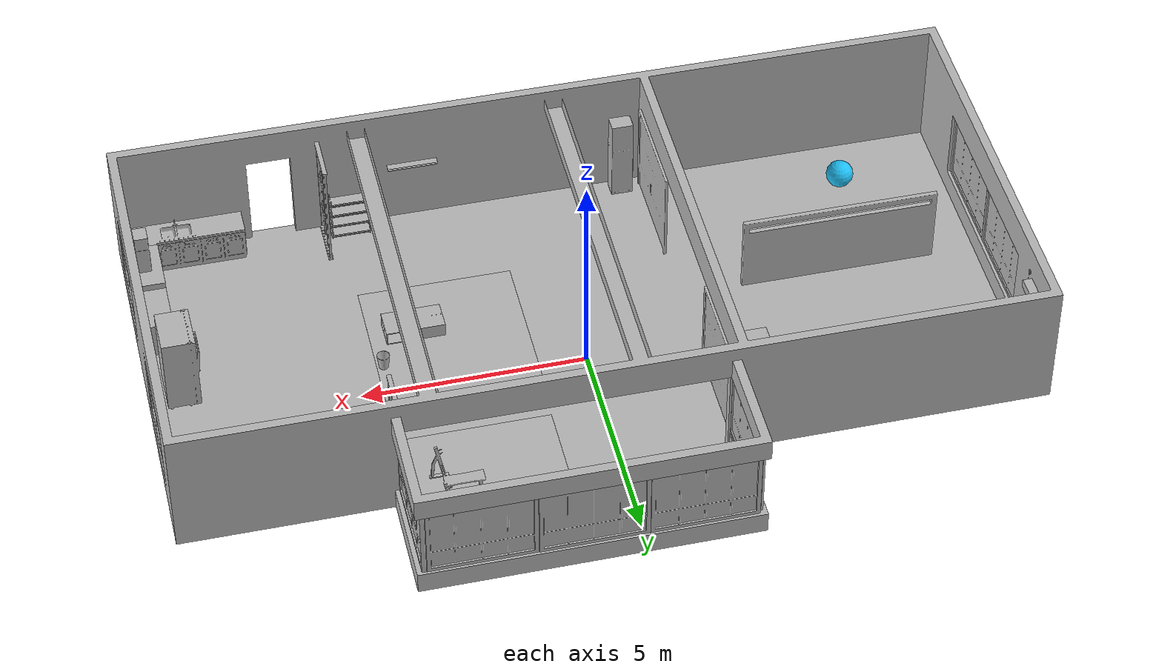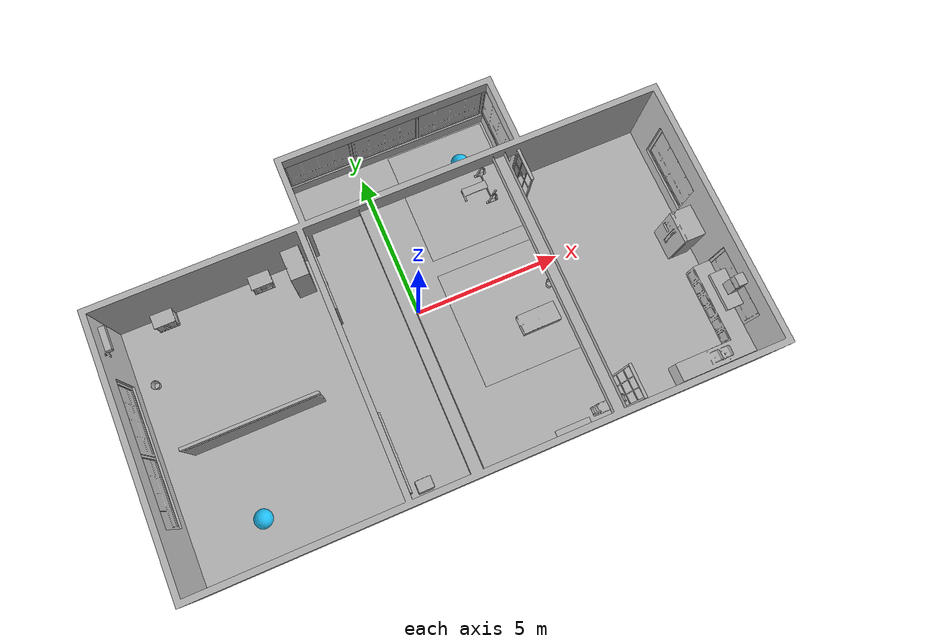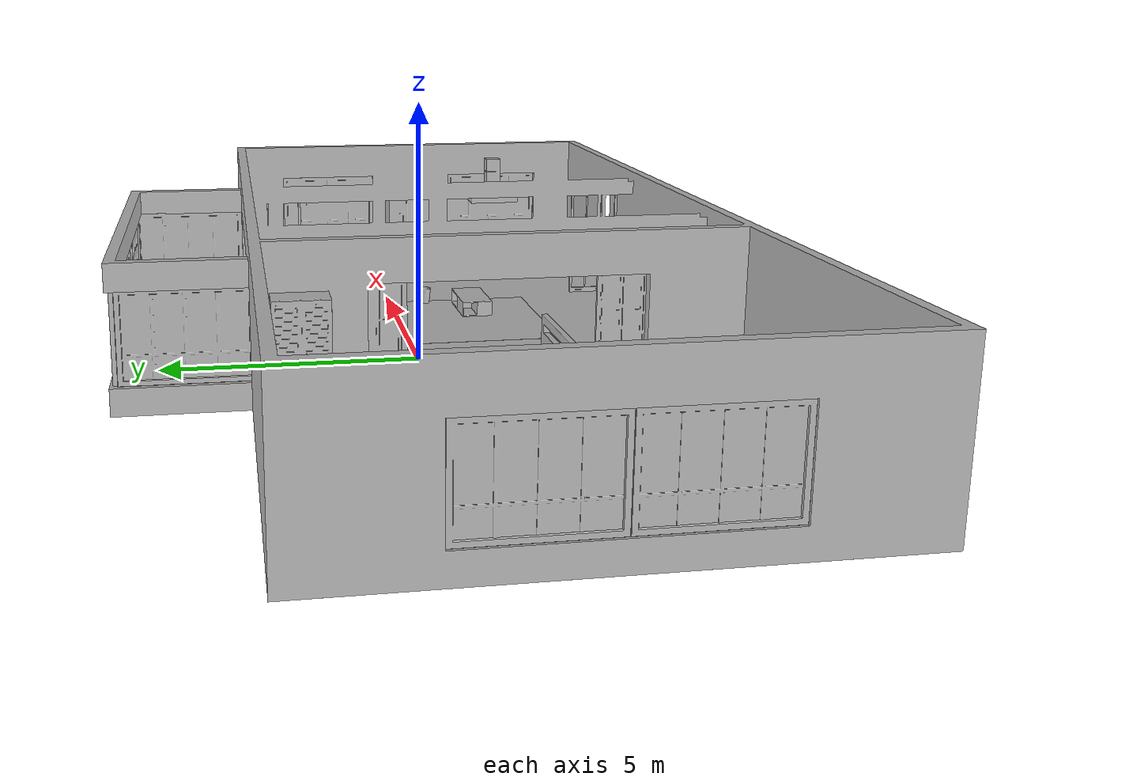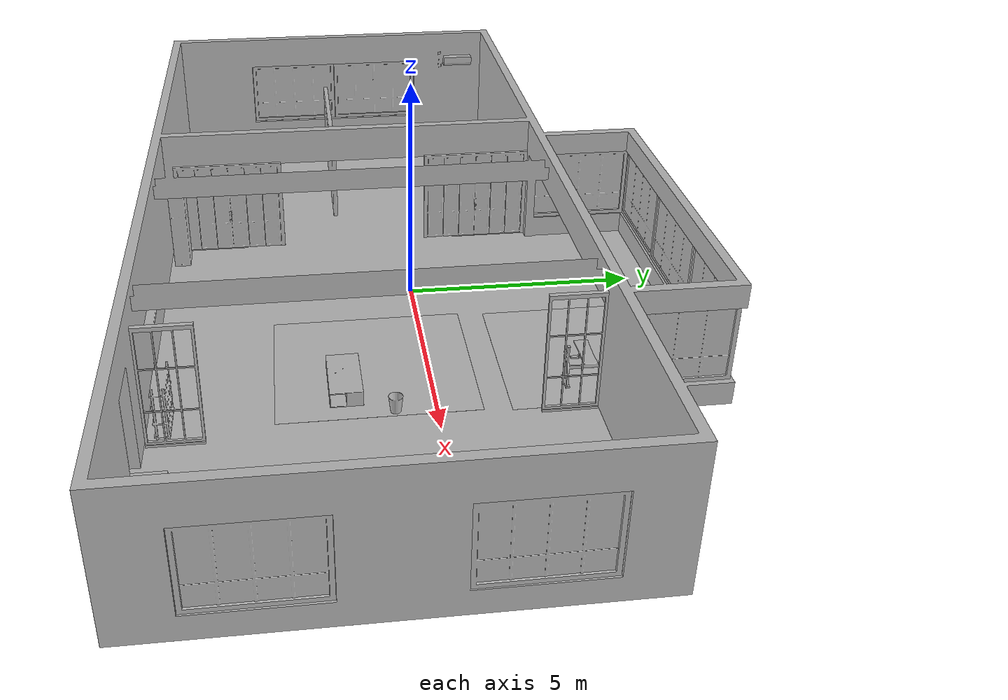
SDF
<sdf version="1.7">
 <world name="default">
  <physics type="ode">
   <gravity>0 0 -9.8066</gravity>
   <ode>
    <solver>
     <type>quick</type>
     <iters>10</iters>
     <sor>1.3</sor>
     <use_dynamic_moi_rescaling>0</use_dynamic_moi_rescaling>
    </solver>
    <constraints>
     <cfm>0.00001</cfm>
     <erp>0.2</erp>
     <contact_max_correcting_vel>1000</contact_max_correcting_vel>
     <contact_surface_layer>0.01</contact_surface_layer>
    </constraints>
   </ode>
   <max_step_size>0.004</max_step_size>
   <real_time_factor>1.0</real_time_factor>
   <real_time_update_rate>250</real_time_update_rate>
   <magnetic_field>6.0e-6 2.3e-5 -4.2e-5</magnetic_field>
  </physics>
  <model name="AirconditionerA_01_001">
   <frame name="aws_robomaker_residential_AirconditionerA_01::__model__" attached_to="aws_robomaker_residential_AirconditionerA_01::link">
    <pose relative_to="__model__">0 0 0 0 -0 0</pose>
   </frame>
   <link name="aws_robomaker_residential_AirconditionerA_01::link">
    <inertial><mass>1</mass></inertial>
    <collision name="collision">
     <geometry>
      <mesh>
       <uri>file://models/aws_robomaker_residential_AirconditionerA_01/meshes/aws_AirconditionerA_01_collision.DAE</uri>
       <scale>1 1 1</scale>
      </mesh>
     </geometry>
    </collision>
    <visual name="visual">
     <geometry>
      <mesh>
       <uri>file://models/aws_robomaker_residential_AirconditionerA_01/meshes/aws_AirconditionerA_01_visual.DAE</uri>
      </mesh>
     </geometry>
     <meta><layer>1</layer></meta>
    </visual>
    <pose relative_to="aws_robomaker_residential_AirconditionerA_01::__model__">0 0 0 0 -0 0</pose>
   </link>
   <static>1</static>
   <pose>-9.19941 2.41123 2.08454 0 -0 0</pose>
  </model>
  <model name="AirconditionerB_01_001">
   <frame name="aws_robomaker_residential_AirconditionerB_01::__model__" attached_to="aws_robomaker_residential_AirconditionerB_01::link">
    <pose relative_to="__model__">0 0 0 0 -0 0</pose>
   </frame>
   <link name="aws_robomaker_residential_AirconditionerB_01::link">
    <inertial>
     <mass>1</mass>
     <inertia><ixx>1</ixx><ixy>0</ixy><ixz>0</ixz><iyy>1</iyy><iyz>0</iyz><izz>1</izz></inertia>
    </inertial>
    <collision name="collision">
     <geometry>
      <mesh>
       <uri>model://aws_robomaker_residential_AirconditionerB_01/meshes/aws_AirconditionerB_01_collision.DAE</uri>
       <scale>1 1 1</scale>
      </mesh>
     </geometry>
    </collision>
    <visual name="visual">
     <geometry>
      <mesh>
       <uri>model://aws_robomaker_residential_AirconditionerB_01/meshes/aws_AirconditionerB_01_visual.DAE</uri>
      </mesh>
     </geometry>
     <meta><layer>1</layer></meta>
    </visual>
    <pose relative_to="aws_robomaker_residential_AirconditionerB_01::__model__">0 0 0 0 -0 0</pose>
   </link>
   <pose>-2.00466 -5.22661 0.003484 0 -3e-06 0</pose>
  </model>
  <model name="Ball_01_001">
   <frame name="aws_robomaker_residential_Ball_01::__model__" attached_to="aws_robomaker_residential_Ball_01::link">
    <pose relative_to="__model__">0 0 0 0 -0 0</pose>
   </frame>
   <link name="aws_robomaker_residential_Ball_01::link">
    <inertial>
     <mass>0.12</mass>
     <inertia>
      <ixx>0.030752</ixx>
      <ixy>0</ixy>
      <ixz>0</ixz>
      <iyy>0.030752</iyy>
      <iyz>0</iyz>
      <izz>0.030752</izz>
     </inertia>
    </inertial>
    <collision name="collision">
     <geometry><sphere><radius>0.31</radius></sphere></geometry>
     <surface>
      <friction><ode><mu>0.85</mu><mu2>0.85</mu2></ode></friction>
      <contact><ode><kd>8500</kd><max_vel>5.1</max_vel></ode></contact>
     </surface>
    </collision>
    <visual name="visual">
     <geometry><sphere><radius>0.31</radius></sphere></geometry>
     <material><diffuse>0.12 0.76 0.97 1</diffuse><ambient>0.03 0.21 0.27 1</ambient></material>
     <meta><layer>1</layer></meta>
    </visual>
    <pose relative_to="aws_robomaker_residential_Ball_01::__model__">0 0 0 0 -0 0</pose>
   </link>
   <pose>3.2955 4.22567 0.31 0 -0 0</pose>
  </model>
  <model name="Ball_01_003">
   <frame name="aws_robomaker_residential_Ball_01::__model__" attached_to="aws_robomaker_residential_Ball_01::link">
    <pose relative_to="__model__">0 0 0 0 -0 0</pose>
   </frame>
   <link name="aws_robomaker_residential_Ball_01::link">
    <inertial>
     <mass>0.12</mass>
     <inertia>
      <ixx>0.030752</ixx>
      <ixy>0</ixy>
      <ixz>0</ixz>
      <iyy>0.030752</iyy>
      <iyz>0</iyz>
      <izz>0.030752</izz>
     </inertia>
    </inertial>
    <collision name="collision">
     <geometry><sphere><radius>0.31</radius></sphere></geometry>
     <surface>
      <friction><ode><mu>0.85</mu><mu2>0.85</mu2></ode></friction>
      <contact><ode><kd>8500</kd><max_vel>5.1</max_vel></ode></contact>
     </surface>
    </collision>
    <visual name="visual">
     <geometry><sphere><radius>0.31</radius></sphere></geometry>
     <material><diffuse>0.12 0.76 0.97 1</diffuse><ambient>0.03 0.21 0.27 1</ambient></material>
     <meta><layer>1</layer></meta>
    </visual>
    <pose relative_to="aws_robomaker_residential_Ball_01::__model__">0 0 0 0 -0 0</pose>
   </link>
   <pose>-6.9455 -4.22174 0.31 0 -0 0</pose>
  </model>
  <model name="NightStand_01_001">
   <frame name="aws_robomaker_residential_NightStand_01::__model__" attached_to="aws_robomaker_residential_NightStand_01::link">
    <pose relative_to="__model__">0 0 0 0 -0 0</pose>
   </frame>
   <link name="aws_robomaker_residential_NightStand_01::link">
    <inertial>
     <mass>13.6</mass>
     <inertia><ixx>0.6165</ixx><ixy>0</ixy><ixz>0</ixz><iyy>1.29664</iyy><iyz>0</iyz><izz>0.7706</izz></inertia>
    </inertial>
    <collision name="collision">
     <geometry>
      <mesh>
       <uri>model://aws_robomaker_residential_NightStand_01/meshes/aws_NightStand_01_collision.DAE</uri>
       <scale>1 1 1</scale>
      </mesh>
     </geometry>
    </collision>
    <visual name="visual">
     <geometry>
      <mesh><uri>model://aws_robomaker_residential_NightStand_01/meshes/aws_NightStand_01_visual.DAE</uri></mesh>
     </geometry>
     <meta><layer>1</layer></meta>
    </visual>
    <pose relative_to="aws_robomaker_residential_NightStand_01::__model__">0 0 0 0 -0 0</pose>
   </link>
   <static>1</static>
   <pose>-7.72551 2.86042 0.005258 -2e-06 0 0</pose>
  </model>
  <model name="NightStand_01_002">
   <frame name="aws_robomaker_residential_NightStand_01::__model__" attached_to="aws_robomaker_residential_NightStand_01::link">
    <pose relative_to="__model__">0 0 0 0 -0 0</pose>
   </frame>
   <link name="aws_robomaker_residential_NightStand_01::link">
    <inertial>
     <mass>13.6</mass>
     <inertia><ixx>0.6165</ixx><ixy>0</ixy><ixz>0</ixz><iyy>1.29664</iyy><iyz>0</iyz><izz>0.7706</izz></inertia>
    </inertial>
    <collision name="collision">
     <geometry>
      <mesh>
       <uri>model://aws_robomaker_residential_NightStand_01/meshes/aws_NightStand_01_collision.DAE</uri>
       <scale>1 1 1</scale>
      </mesh>
     </geometry>
    </collision>
    <visual name="visual">
     <geometry>
      <mesh><uri>model://aws_robomaker_residential_NightStand_01/meshes/aws_NightStand_01_visual.DAE</uri></mesh>
     </geometry>
     <meta><layer>1</layer></meta>
    </visual>
    <pose relative_to="aws_robomaker_residential_NightStand_01::__model__">0 0 0 0 -0 0</pose>
   </link>
   <static>1</static>
   <pose>-4.40734 2.86042 0.005256 0 2e-06 0</pose>
  </model>
  <model name="Board_01_001">
   <frame name="aws_robomaker_residential_Board_01::__model__" attached_to="aws_robomaker_residential_Board_01::link">
    <pose relative_to="__model__">0 0 0 0 -0 0</pose>
   </frame>
   <link name="aws_robomaker_residential_Board_01::link">
    <inertial><mass>1</mass></inertial>
    <collision name="collision">
     <geometry>
      <mesh>
       <uri>model://aws_robomaker_residential_Board_01/meshes/aws_Board_01_collision.DAE</uri>
       <scale>1 1 1</scale>
      </mesh>
     </geometry>
    </collision>
    <visual name="visual">
     <geometry>
      <mesh><uri>model://aws_robomaker_residential_Board_01/meshes/aws_Board_01_visual.DAE</uri></mesh>
     </geometry>
     <meta><layer>2</layer></meta>
    </visual>
    <pose relative_to="aws_robomaker_residential_Board_01::__model__">0 0 0 0 -0 0</pose>
   </link>
   <static>1</static>
   <pose>2.77907 -5.3927 1.53817 0 -0 0</pose>
  </model>
  <model name="Carpet_01_001">
   <frame name="aws_robomaker_residential_Carpet_01::__model__" attached_to="aws_robomaker_residential_Carpet_01::link">
    <pose relative_to="__model__">0 0 0 0 -0 0</pose>
   </frame>
   <link name="aws_robomaker_residential_Carpet_01::link">
    <inertial><mass>8.1</mass></inertial>
    <collision name="collision">
     <geometry>
      <mesh>
       <uri>model://aws_robomaker_residential_Carpet_01/meshes/aws_Carpet_01_collision.DAE</uri>
       <scale>1 1 0.95</scale>
      </mesh>
     </geometry>
     <pose>0 0 -0.01 0 -0 0</pose>
    </collision>
    <visual name="visual">
     <geometry>
      <mesh><uri>model://aws_robomaker_residential_Carpet_01/meshes/aws_Carpet_01_visual.DAE</uri></mesh>
     </geometry>
     <meta><layer>1</layer></meta>
    </visual>
    <pose relative_to="aws_robomaker_residential_Carpet_01::__model__">0 0 0 0 -0 0</pose>
   </link>
   <static>1</static>
   <pose>2.78505 -1.10665 0.001106 0 -0 0</pose>
  </model>
  <model name="Carpet_01_002">
   <frame name="aws_robomaker_residential_Carpet_01::__model__" attached_to="aws_robomaker_residential_Carpet_01::link">
    <pose relative_to="__model__">0 0 0 0 -0 0</pose>
   </frame>
   <link name="aws_robomaker_residential_Carpet_01::link">
    <inertial><mass>8.1</mass></inertial>
    <collision name="collision">
     <geometry>
      <mesh>
       <uri>model://aws_robomaker_residential_Carpet_01/meshes/aws_Carpet_01_collision.DAE</uri>
       <scale>1 1 0.95</scale>
      </mesh>
     </geometry>
     <pose>0 0 -0.01 0 -0 0</pose>
    </collision>
    <visual name="visual">
     <geometry>
      <mesh><uri>model://aws_robomaker_residential_Carpet_01/meshes/aws_Carpet_01_visual.DAE</uri></mesh>
     </geometry>
     <meta><layer>1</layer></meta>
    </visual>
    <pose relative_to="aws_robomaker_residential_Carpet_01::__model__">0 0 0 0 -0 0</pose>
   </link>
   <static>1</static>
   <pose>2.85405 3.45 0.000585 0 -0 0</pose>
  </model>
  <model name="CoffeeTable_01_001">
   <frame name="aws_robomaker_residential_CoffeeTable_01::__model__" attached_to="aws_robomaker_residential_CoffeeTable_01::link">
    <pose relative_to="__model__">0 0 0 0 -0 0</pose>
   </frame>
   <link name="aws_robomaker_residential_CoffeeTable_01::link">
    <inertial>
     <mass>21.7</mass>
     <inertia><ixx>0.81375</ixx><ixy>0</ixy><ixz>0</ixz><iyy>2.76675</iyy><iyz>0</iyz><izz>3.254</izz></inertia>
    </inertial>
    <collision name="collision">
     <geometry>
      <mesh>
       <uri>model://aws_robomaker_residential_CoffeeTable_01/meshes/aws_CoffeeTable_01_collision.DAE</uri>
       <scale>1 1 1</scale>
      </mesh>
     </geometry>
     <surface><contact><ode><max_vel>0.01</max_vel></ode></contact></surface>
    </collision>
    <visual name="visual">
     <geometry>
      <mesh><uri>model://aws_robomaker_residential_CoffeeTable_01/meshes/aws_CoffeeTable_01_visual.DAE</uri></mesh>
     </geometry>
     <meta><layer>1</layer></meta>
    </visual>
    <pose relative_to="aws_robomaker_residential_CoffeeTable_01::__model__">0 0 0 0 -0 0</pose>
   </link>
   <static>1</static>
   <pose>3.5123 -1.73344 0.041983 0 -0 0.01</pose>
  </model>
  <model name="FitnessEquipment_01_001">
   <frame name="aws_robomaker_residential_FitnessEquipment_01::__model__" attached_to="aws_robomaker_residential_FitnessEquipment_01::link">
    <pose relative_to="__model__">0 0 0 0 -0 0</pose>
   </frame>
   <link name="aws_robomaker_residential_FitnessEquipment_01::link">
    <inertial><mass>80</mass></inertial>
    <collision name="collision">
     <geometry>
      <mesh>
       <uri>model://aws_robomaker_residential_FitnessEquipment_01/meshes/aws_FitnessEquipment_01_collision.DAE</uri>
       <scale>1 1 1</scale>
      </mesh>
     </geometry>
    </collision>
    <visual name="visual">
     <geometry>
      <mesh>
       <uri>model://aws_robomaker_residential_FitnessEquipment_01/meshes/aws_FitnessEquipment_01_visual.DAE</uri>
      </mesh>
     </geometry>
     <meta><layer>1</layer></meta>
    </visual>
    <pose relative_to="aws_robomaker_residential_FitnessEquipment_01::__model__">0 0 0 0 -0 0</pose>
   </link>
   <static>1</static>
   <pose>3.48472 3.1691 0.003168 0 -0 0</pose>
  </model>
  <model name="FoldingDoor_01_001">
   <frame name="aws_robomaker_residential_FoldingDoor_01::__model__" attached_to="aws_robomaker_residential_FoldingDoor_01::link">
    <pose relative_to="__model__">0 0 0 0 -0 0</pose>
   </frame>
   <link name="aws_robomaker_residential_FoldingDoor_01::link">
    <inertial><mass>1</mass></inertial>
    <collision name="collision">
     <geometry>
      <mesh>
       <uri>model://aws_robomaker_residential_FoldingDoor_01/meshes/aws_FoldingDoor_01_collision.DAE</uri>
       <scale>1 1 1</scale>
      </mesh>
     </geometry>
    </collision>
    <visual name="visual">
     <geometry>
      <mesh><uri>model://aws_robomaker_residential_FoldingDoor_01/meshes/aws_FoldingDoor_01_visual.DAE</uri></mesh>
     </geometry>
     <meta><layer>2</layer></meta>
    </visual>
    <pose relative_to="aws_robomaker_residential_FoldingDoor_01::__model__">0 0 0 0 -0 0</pose>
   </link>
   <static>1</static>
   <pose>-2.4611 1.84422 0.041881 0 -0 0</pose>
  </model>
  <model name="FoldingDoor_01_002">
   <frame name="aws_robomaker_residential_FoldingDoor_01::__model__" attached_to="aws_robomaker_residential_FoldingDoor_01::link">
    <pose relative_to="__model__">0 0 0 0 -0 0</pose>
   </frame>
   <link name="aws_robomaker_residential_FoldingDoor_01::link">
    <inertial><mass>1</mass></inertial>
    <collision name="collision">
     <geometry>
      <mesh>
       <uri>model://aws_robomaker_residential_FoldingDoor_01/meshes/aws_FoldingDoor_01_collision.DAE</uri>
       <scale>1 1 1</scale>
      </mesh>
     </geometry>
    </collision>
    <visual name="visual">
     <geometry>
      <mesh><uri>model://aws_robomaker_residential_FoldingDoor_01/meshes/aws_FoldingDoor_01_visual.DAE</uri></mesh>
     </geometry>
     <meta><layer>2</layer></meta>
    </visual>
    <pose relative_to="aws_robomaker_residential_FoldingDoor_01::__model__">0 0 0 0 -0 0</pose>
   </link>
   <static>1</static>
   <pose>-2.4611 -4.05332 0.041881 0 -0 0</pose>
  </model>
  <model name="HouseWallB_01_001">
   <frame name="aws_robomaker_residential_HouseWallB_01::__model__" attached_to="aws_robomaker_residential_HouseWallB_01::link">
    <pose relative_to="__model__">0 0 0 0 -0 0</pose>
   </frame>
   <link name="aws_robomaker_residential_HouseWallB_01::link">
    <inertial><mass>1</mass></inertial>
    <collision name="collision">
     <geometry>
      <mesh>
       <uri>model://aws_robomaker_residential_HouseWallB_01/meshes/aws_HouseWallB_01_collision.DAE</uri>
       <scale>1 1 1</scale>
      </mesh>
     </geometry>
    </collision>
    <visual name="visual">
     <geometry>
      <mesh><uri>model://aws_robomaker_residential_HouseWallB_01/meshes/aws_HouseWallB_01_visual.DAE</uri></mesh>
     </geometry>
     <meta><layer>2</layer></meta>
    </visual>
    <pose relative_to="aws_robomaker_residential_HouseWallB_01::__model__">0 0 0 0 -0 0</pose>
   </link>
   <static>1</static>
  </model>
  <model name="FloorB_01_001">
   <frame name="aws_robomaker_residential_FloorB_01::__model__" attached_to="aws_robomaker_residential_FloorB_01::link">
    <pose relative_to="__model__">0 0 0 0 -0 0</pose>
   </frame>
   <link name="aws_robomaker_residential_FloorB_01::link">
    <inertial><mass>100</mass></inertial>
    <collision name="collision">
     <geometry>
      <mesh>
       <uri>model://aws_robomaker_residential_FloorB_01/meshes/aws_FloorB_01_collision.DAE</uri>
       <scale>1 1 0.9</scale>
      </mesh>
     </geometry>
     <surface><friction><ode><mu>0.6</mu><mu2>0.6</mu2></ode></friction></surface>
    </collision>
    <visual name="visual">
     <geometry>
      <mesh><uri>model://aws_robomaker_residential_FloorB_01/meshes/aws_FloorB_01_visual.DAE</uri></mesh>
     </geometry>
     <meta><layer>1</layer></meta>
    </visual>
    <pose relative_to="aws_robomaker_residential_FloorB_01::__model__">0 0 0 0 -0 0</pose>
   </link>
   <static>1</static>
  </model>
  <model name="FoldingDoor_02_001">
   <frame name="aws_robomaker_residential_FoldingDoor_02::__model__" attached_to="aws_robomaker_residential_FoldingDoor_02::link">
    <pose relative_to="__model__">0 0 0 0 -0 0</pose>
   </frame>
   <link name="aws_robomaker_residential_FoldingDoor_02::link">
    <inertial><mass>1</mass></inertial>
    <collision name="collision">
     <geometry>
      <mesh>
       <uri>model://aws_robomaker_residential_FoldingDoor_02/meshes/aws_FoldingDoor_02_collision.DAE</uri>
       <scale>1 1 1</scale>
      </mesh>
     </geometry>
    </collision>
    <visual name="visual">
     <geometry>
      <mesh><uri>model://aws_robomaker_residential_FoldingDoor_02/meshes/aws_FoldingDoor_02_visual.DAE</uri></mesh>
     </geometry>
     <meta><layer>2</layer></meta>
    </visual>
    <pose relative_to="aws_robomaker_residential_FoldingDoor_02::__model__">0 0 0 0 -0 0</pose>
   </link>
   <static>1</static>
   <pose>4.67423 2.46451 0 0 -0 3.14159</pose>
  </model>
  <model name="FoldingDoor_02_002">
   <frame name="aws_robomaker_residential_FoldingDoor_02::__model__" attached_to="aws_robomaker_residential_FoldingDoor_02::link">
    <pose relative_to="__model__">0 0 0 0 -0 0</pose>
   </frame>
   <link name="aws_robomaker_residential_FoldingDoor_02::link">
    <inertial><mass>1</mass></inertial>
    <collision name="collision">
     <geometry>
      <mesh>
       <uri>model://aws_robomaker_residential_FoldingDoor_02/meshes/aws_FoldingDoor_02_collision.DAE</uri>
       <scale>1 1 1</scale>
      </mesh>
     </geometry>
    </collision>
    <visual name="visual">
     <geometry>
      <mesh><uri>model://aws_robomaker_residential_FoldingDoor_02/meshes/aws_FoldingDoor_02_visual.DAE</uri></mesh>
     </geometry>
     <meta><layer>2</layer></meta>
    </visual>
    <pose relative_to="aws_robomaker_residential_FoldingDoor_02::__model__">0 0 0 0 -0 0</pose>
   </link>
   <static>1</static>
   <pose>4.8912 -4.84968 0 0 -0 0</pose>
  </model>
  <model name="KitchenCabinet_01_001">
   <frame name="aws_robomaker_residential_KitchenCabinet_01::__model__" attached_to="aws_robomaker_residential_KitchenCabinet_01::link">
    <pose relative_to="__model__">0 0 0 0 -0 0</pose>
   </frame>
   <link name="aws_robomaker_residential_KitchenCabinet_01::link">
    <inertial><mass>1</mass></inertial>
    <collision name="collision">
     <geometry>
      <mesh>
       <uri>model://aws_robomaker_residential_KitchenCabinet_01/meshes/aws_KitchenCabinet_01_collision.DAE</uri>
       <scale>1 1 1</scale>
      </mesh>
     </geometry>
    </collision>
    <visual name="visual">
     <geometry>
      <mesh>
       <uri>model://aws_robomaker_residential_KitchenCabinet_01/meshes/aws_KitchenCabinet_01_visual.DAE</uri>
      </mesh>
     </geometry>
     <meta><layer>1</layer></meta>
    </visual>
    <pose relative_to="aws_robomaker_residential_KitchenCabinet_01::__model__">0 0 0 0 -0 0</pose>
   </link>
   <static>1</static>
   <pose>8.00201 -3.83651 0.012068 0 0 -3.14</pose>
  </model>
  <model name="Rangehood_01_001">
   <frame name="aws_robomaker_residential_Rangehood_01::__model__" attached_to="aws_robomaker_residential_Rangehood_01::link">
    <pose relative_to="__model__">0 0 0 0 -0 0</pose>
   </frame>
   <link name="aws_robomaker_residential_Rangehood_01::link">
    <inertial><mass>1</mass></inertial>
    <collision name="collision">
     <geometry>
      <mesh>
       <uri>model://aws_robomaker_residential_Rangehood_01/meshes/aws_Rangehood_01_collision.DAE</uri>
       <scale>1 1 1</scale>
      </mesh>
     </geometry>
    </collision>
    <visual name="visual">
     <geometry>
      <mesh><uri>model://aws_robomaker_residential_Rangehood_01/meshes/aws_Rangehood_01_visual.DAE</uri></mesh>
     </geometry>
     <meta><layer>2</layer></meta>
    </visual>
    <pose relative_to="aws_robomaker_residential_Rangehood_01::__model__">0 0 0 0 -0 0</pose>
   </link>
   <static>1</static>
   <pose>9.01979 -3.36994 1.50761 0 -0 0</pose>
  </model>
  <model name="Refrigerator_01_001">
   <frame name="aws_robomaker_residential_Refrigerator_01::__model__" attached_to="aws_robomaker_residential_Refrigerator_01::link">
    <pose relative_to="__model__">0 0 0 0 -0 0</pose>
   </frame>
   <link name="aws_robomaker_residential_Refrigerator_01::link">
    <inertial><mass>1</mass></inertial>
    <collision name="collision">
     <geometry>
      <mesh>
       <uri>model://aws_robomaker_residential_Refrigerator_01/meshes/aws_Refrigerator_01_collision.DAE</uri>
       <scale>1 1 1</scale>
      </mesh>
     </geometry>
    </collision>
    <visual name="visual">
     <geometry>
      <mesh>
       <uri>model://aws_robomaker_residential_Refrigerator_01/meshes/aws_Refrigerator_01_visual.DAE</uri>
      </mesh>
     </geometry>
     <meta><layer>1</layer></meta>
    </visual>
    <pose relative_to="aws_robomaker_residential_Refrigerator_01::__model__">0 0 0 0 -0 0</pose>
   </link>
   <static>1</static>
   <pose>8.70273 -1.03203 0 0 0 -1.5635</pose>
  </model>
  <model name="ShoeRack_01_001">
   <frame name="aws_robomaker_residential_ShoeRack_01::__model__" attached_to="aws_robomaker_residential_ShoeRack_01::link">
    <pose relative_to="__model__">0 0 0 0 -0 0</pose>
   </frame>
   <link name="aws_robomaker_residential_ShoeRack_01::link">
    <inertial>
     <mass>6</mass>
     <inertia>
      <ixx>0.02</ixx>
      <ixy>0</ixy>
      <ixz>0</ixz>
      <iyy>0.04</iyy>
      <iyz>0</iyz>
      <ixx>0.02</ixx>
      <izz>1</izz>
     </inertia>
    </inertial>
    <collision name="collision">
     <geometry>
      <mesh>
       <uri>model://aws_robomaker_residential_ShoeRack_01/meshes/aws_ShoeRack_01_collision.DAE</uri>
       <scale>1 1 1</scale>
      </mesh>
     </geometry>
     <surface>
      <friction><ode><mu>0.2</mu><mu2>0.2</mu2></ode></friction>
      <contact><ode><kd>2500</kd></ode></contact>
     </surface>
    </collision>
    <visual name="visual">
     <geometry>
      <mesh><uri>model://aws_robomaker_residential_ShoeRack_01/meshes/aws_ShoeRack_01_visual.DAE</uri></mesh>
     </geometry>
     <meta><layer>1</layer></meta>
    </visual>
    <pose relative_to="aws_robomaker_residential_ShoeRack_01::__model__">0 0 0 0 -0 0</pose>
   </link>
   <pose>4.29798 -5.17357 0.00446 0 -1.1e-05 1e-06</pose>
  </model>
  <model name="Trash_01_001">
   <frame name="aws_robomaker_residential_Trash_01::__model__" attached_to="aws_robomaker_residential_Trash_01::link">
    <pose relative_to="__model__">0 0 0 0 -0 0</pose>
   </frame>
   <link name="aws_robomaker_residential_Trash_01::link">
    <inertial>
     <mass>0.1</mass>
     <inertia><ixy>0</ixy><ixz>0</ixz><iyz>0</iyz><ixx>0.05288</ixx><iyy>0.05288</iyy><izz>0.09132</izz></inertia>
    </inertial>
    <collision name="collision">
     <geometry>
      <mesh>
       <uri>model://aws_robomaker_residential_Trash_01/meshes/aws_Trash_01_collision.DAE</uri>
       <scale>1 1 1</scale>
      </mesh>
     </geometry>
    </collision>
    <visual name="visual">
     <geometry>
      <mesh><uri>model://aws_robomaker_residential_Trash_01/meshes/aws_Trash_01_visual.DAE</uri></mesh>
     </geometry>
     <meta><layer>1</layer></meta>
    </visual>
    <pose relative_to="aws_robomaker_residential_Trash_01::__model__">0 0 0 0 -0 0</pose>
   </link>
   <pose>4.36015 -0.796238 0.000904 0 -0 0</pose>
  </model>
  <model name="Trash_01_002">
   <frame name="aws_robomaker_residential_Trash_01::__model__" attached_to="aws_robomaker_residential_Trash_01::link">
    <pose relative_to="__model__">0 0 0 0 -0 0</pose>
   </frame>
   <link name="aws_robomaker_residential_Trash_01::link">
    <inertial>
     <mass>0.1</mass>
     <inertia><ixy>0</ixy><ixz>0</ixz><iyz>0</iyz><ixx>0.05288</ixx><iyy>0.05288</iyy><izz>0.09132</izz></inertia>
    </inertial>
    <collision name="collision">
     <geometry>
      <mesh>
       <uri>model://aws_robomaker_residential_Trash_01/meshes/aws_Trash_01_collision.DAE</uri>
       <scale>1 1 1</scale>
      </mesh>
     </geometry>
    </collision>
    <visual name="visual">
     <geometry>
      <mesh><uri>model://aws_robomaker_residential_Trash_01/meshes/aws_Trash_01_visual.DAE</uri></mesh>
     </geometry>
     <meta><layer>1</layer></meta>
    </visual>
    <pose relative_to="aws_robomaker_residential_Trash_01::__model__">0 0 0 0 -0 0</pose>
   </link>
   <pose>-8.70415 1.00058 0.000894 0 -0 0</pose>
  </model>
  <model name="RoomWall_01_001">
   <frame name="aws_robomaker_residential_RoomWall_01::__model__" attached_to="aws_robomaker_residential_RoomWall_01::link">
    <pose relative_to="__model__">0 0 0 0 -0 0</pose>
   </frame>
   <link name="aws_robomaker_residential_RoomWall_01::link">
    <inertial><mass>100</mass></inertial>
    <collision name="collision">
     <geometry>
      <mesh>
       <uri>model://aws_robomaker_residential_RoomWall_01/meshes/aws_RoomWall_01_collision.DAE</uri>
       <scale>1 1 1</scale>
      </mesh>
     </geometry>
    </collision>
    <visual name="visual">
     <geometry>
      <mesh><uri>model://aws_robomaker_residential_RoomWall_01/meshes/aws_RoomWall_01_visual.DAE</uri></mesh>
     </geometry>
     <meta><layer>2</layer></meta>
    </visual>
    <pose relative_to="aws_robomaker_residential_RoomWall_01::__model__">0 0 0 0 -0 0</pose>
   </link>
   <static>1</static>
   <pose>-6.09755 -1.49618 0.028124 0 -0 0</pose>
  </model>
  <model name="Wardrobe_01_001">
   <frame name="aws_robomaker_residential_Wardrobe_01::__model__" attached_to="aws_robomaker_residential_Wardrobe_01::link">
    <pose relative_to="__model__">0 0 0 0 -0 0</pose>
   </frame>
   <link name="aws_robomaker_residential_Wardrobe_01::link">
    <inertial><mass>51.7</mass></inertial>
    <collision name="collision">
     <geometry>
      <mesh>
       <uri>model://aws_robomaker_residential_Wardrobe_01/meshes/aws_Wardrobe_01_collision.DAE</uri>
       <scale>1 1 1</scale>
      </mesh>
     </geometry>
    </collision>
    <visual name="visual">
     <geometry>
      <mesh><uri>model://aws_robomaker_residential_Wardrobe_01/meshes/aws_Wardrobe_01_visual.DAE</uri></mesh>
     </geometry>
     <meta><layer>1</layer></meta>
    </visual>
    <pose relative_to="aws_robomaker_residential_Wardrobe_01::__model__">0 0 0 0 -0 0</pose>
   </link>
   <static>1</static>
   <pose>-3.14671 2.4762 0.000704 0 0 -1.56967</pose>
  </model>
  <model name="RoomWindow_01_001">
   <frame name="aws_robomaker_residential_RoomWindow_01::__model__" attached_to="aws_robomaker_residential_RoomWindow_01::link">
    <pose relative_to="__model__">0 0 0 0 -0 0</pose>
   </frame>
   <link name="aws_robomaker_residential_RoomWindow_01::link">
    <inertial><mass>1</mass></inertial>
    <collision name="collision">
     <geometry>
      <mesh>
       <uri>model://aws_robomaker_residential_RoomWindow_01/meshes/aws_RoomWindow_01_collision.DAE</uri>
       <scale>1 1 1</scale>
      </mesh>
     </geometry>
    </collision>
    <visual name="visual">
     <geometry>
      <mesh><uri>model://aws_robomaker_residential_RoomWindow_01/meshes/aws_RoomWindow_01_visual.DAE</uri></mesh>
     </geometry>
     <meta><layer>2</layer></meta>
    </visual>
    <pose relative_to="aws_robomaker_residential_RoomWindow_01::__model__">0 0 0 0 -0 0</pose>
   </link>
   <static>1</static>
   <pose>-9.4186 -0.026285 0.502739 0 -0 0</pose>
  </model>
  <model name="RoomWindow_01_002">
   <frame name="aws_robomaker_residential_RoomWindow_01::__model__" attached_to="aws_robomaker_residential_RoomWindow_01::link">
    <pose relative_to="__model__">0 0 0 0 -0 0</pose>
   </frame>
   <link name="aws_robomaker_residential_RoomWindow_01::link">
    <inertial><mass>1</mass></inertial>
    <collision name="collision">
     <geometry>
      <mesh>
       <uri>model://aws_robomaker_residential_RoomWindow_01/meshes/aws_RoomWindow_01_collision.DAE</uri>
       <scale>1 1 1</scale>
      </mesh>
     </geometry>
    </collision>
    <visual name="visual">
     <geometry>
      <mesh><uri>model://aws_robomaker_residential_RoomWindow_01/meshes/aws_RoomWindow_01_visual.DAE</uri></mesh>
     </geometry>
     <meta><layer>2</layer></meta>
    </visual>
    <pose relative_to="aws_robomaker_residential_RoomWindow_01::__model__">0 0 0 0 -0 0</pose>
   </link>
   <static>1</static>
   <pose>-9.4186 -2.37409 0.502739 0 -0 0</pose>
  </model>
  <model name="RoomWindow_01_003">
   <frame name="aws_robomaker_residential_RoomWindow_01::__model__" attached_to="aws_robomaker_residential_RoomWindow_01::link">
    <pose relative_to="__model__">0 0 0 0 -0 0</pose>
   </frame>
   <link name="aws_robomaker_residential_RoomWindow_01::link">
    <inertial><mass>1</mass></inertial>
    <collision name="collision">
     <geometry>
      <mesh>
       <uri>model://aws_robomaker_residential_RoomWindow_01/meshes/aws_RoomWindow_01_collision.DAE</uri>
       <scale>1 1 1</scale>
      </mesh>
     </geometry>
    </collision>
    <visual name="visual">
     <geometry>
      <mesh><uri>model://aws_robomaker_residential_RoomWindow_01/meshes/aws_RoomWindow_01_visual.DAE</uri></mesh>
     </geometry>
     <meta><layer>2</layer></meta>
    </visual>
    <pose relative_to="aws_robomaker_residential_RoomWindow_01::__model__">0 0 0 0 -0 0</pose>
   </link>
   <static>1</static>
   <pose>9.42262 -3.37398 0.502739 0 0 -3.1361</pose>
  </model>
  <model name="RoomWindow_01_004">
   <frame name="aws_robomaker_residential_RoomWindow_01::__model__" attached_to="aws_robomaker_residential_RoomWindow_01::link">
    <pose relative_to="__model__">0 0 0 0 -0 0</pose>
   </frame>
   <link name="aws_robomaker_residential_RoomWindow_01::link">
    <inertial><mass>1</mass></inertial>
    <collision name="collision">
     <geometry>
      <mesh>
       <uri>model://aws_robomaker_residential_RoomWindow_01/meshes/aws_RoomWindow_01_collision.DAE</uri>
       <scale>1 1 1</scale>
      </mesh>
     </geometry>
    </collision>
    <visual name="visual">
     <geometry>
      <mesh><uri>model://aws_robomaker_residential_RoomWindow_01/meshes/aws_RoomWindow_01_visual.DAE</uri></mesh>
     </geometry>
     <meta><layer>2</layer></meta>
    </visual>
    <pose relative_to="aws_robomaker_residential_RoomWindow_01::__model__">0 0 0 0 -0 0</pose>
   </link>
   <static>1</static>
   <pose>9.42256 0.96852 0.496581 0 0 -3.1361</pose>
  </model>
  <model name="RoomWindow_01_005">
   <frame name="aws_robomaker_residential_RoomWindow_01::__model__" attached_to="aws_robomaker_residential_RoomWindow_01::link">
    <pose relative_to="__model__">0 0 0 0 -0 0</pose>
   </frame>
   <link name="aws_robomaker_residential_RoomWindow_01::link">
    <inertial><mass>1</mass></inertial>
    <collision name="collision">
     <geometry>
      <mesh>
       <uri>model://aws_robomaker_residential_RoomWindow_01/meshes/aws_RoomWindow_01_collision.DAE</uri>
       <scale>1 1 1</scale>
      </mesh>
     </geometry>
    </collision>
    <visual name="visual">
     <geometry>
      <mesh><uri>model://aws_robomaker_residential_RoomWindow_01/meshes/aws_RoomWindow_01_visual.DAE</uri></mesh>
     </geometry>
     <meta><layer>2</layer></meta>
    </visual>
    <pose relative_to="aws_robomaker_residential_RoomWindow_01::__model__">0 0 0 0 -0 0</pose>
   </link>
   <static>1</static>
   <pose>4.72232 4.47028 0.502739 0 0 -3.1361</pose>
  </model>
  <model name="RoomWindow_01_006">
   <frame name="aws_robomaker_residential_RoomWindow_01::__model__" attached_to="aws_robomaker_residential_RoomWindow_01::link">
    <pose relative_to="__model__">0 0 0 0 -0 0</pose>
   </frame>
   <link name="aws_robomaker_residential_RoomWindow_01::link">
    <inertial><mass>1</mass></inertial>
    <collision name="collision">
     <geometry>
      <mesh>
       <uri>model://aws_robomaker_residential_RoomWindow_01/meshes/aws_RoomWindow_01_collision.DAE</uri>
       <scale>1 1 1</scale>
      </mesh>
     </geometry>
    </collision>
    <visual name="visual">
     <geometry>
      <mesh><uri>model://aws_robomaker_residential_RoomWindow_01/meshes/aws_RoomWindow_01_visual.DAE</uri></mesh>
     </geometry>
     <meta><layer>2</layer></meta>
    </visual>
    <pose relative_to="aws_robomaker_residential_RoomWindow_01::__model__">0 0 0 0 -0 0</pose>
   </link>
   <static>1</static>
   <pose>3.48852 5.60069 0.502739 0 0 -1.56627</pose>
  </model>
  <model name="RoomWindow_01_007">
   <frame name="aws_robomaker_residential_RoomWindow_01::__model__" attached_to="aws_robomaker_residential_RoomWindow_01::link">
    <pose relative_to="__model__">0 0 0 0 -0 0</pose>
   </frame>
   <link name="aws_robomaker_residential_RoomWindow_01::link">
    <inertial><mass>1</mass></inertial>
    <collision name="collision">
     <geometry>
      <mesh>
       <uri>model://aws_robomaker_residential_RoomWindow_01/meshes/aws_RoomWindow_01_collision.DAE</uri>
       <scale>1 1 1</scale>
      </mesh>
     </geometry>
    </collision>
    <visual name="visual">
     <geometry>
      <mesh><uri>model://aws_robomaker_residential_RoomWindow_01/meshes/aws_RoomWindow_01_visual.DAE</uri></mesh>
     </geometry>
     <meta><layer>2</layer></meta>
    </visual>
    <pose relative_to="aws_robomaker_residential_RoomWindow_01::__model__">0 0 0 0 -0 0</pose>
   </link>
   <static>1</static>
   <pose>1.14095 5.60069 0.502739 0 0 -1.56627</pose>
  </model>
  <model name="RoomWindow_01_008">
   <frame name="aws_robomaker_residential_RoomWindow_01::__model__" attached_to="aws_robomaker_residential_RoomWindow_01::link">
    <pose relative_to="__model__">0 0 0 0 -0 0</pose>
   </frame>
   <link name="aws_robomaker_residential_RoomWindow_01::link">
    <inertial><mass>1</mass></inertial>
    <collision name="collision">
     <geometry>
      <mesh>
       <uri>model://aws_robomaker_residential_RoomWindow_01/meshes/aws_RoomWindow_01_collision.DAE</uri>
       <scale>1 1 1</scale>
      </mesh>
     </geometry>
    </collision>
    <visual name="visual">
     <geometry>
      <mesh><uri>model://aws_robomaker_residential_RoomWindow_01/meshes/aws_RoomWindow_01_visual.DAE</uri></mesh>
     </geometry>
     <meta><layer>2</layer></meta>
    </visual>
    <pose relative_to="aws_robomaker_residential_RoomWindow_01::__model__">0 0 0 0 -0 0</pose>
   </link>
   <static>1</static>
   <pose>-1.19934 5.60069 0.502739 0 0 -1.56627</pose>
  </model>
  <model name="RoomWindow_01_009">
   <frame name="aws_robomaker_residential_RoomWindow_01::__model__" attached_to="aws_robomaker_residential_RoomWindow_01::link">
    <pose relative_to="__model__">0 0 0 0 -0 0</pose>
   </frame>
   <link name="aws_robomaker_residential_RoomWindow_01::link">
    <inertial><mass>1</mass></inertial>
    <collision name="collision">
     <geometry>
      <mesh>
       <uri>model://aws_robomaker_residential_RoomWindow_01/meshes/aws_RoomWindow_01_collision.DAE</uri>
       <scale>1 1 1</scale>
      </mesh>
     </geometry>
    </collision>
    <visual name="visual">
     <geometry>
      <mesh><uri>model://aws_robomaker_residential_RoomWindow_01/meshes/aws_RoomWindow_01_visual.DAE</uri></mesh>
     </geometry>
     <meta><layer>2</layer></meta>
    </visual>
    <pose relative_to="aws_robomaker_residential_RoomWindow_01::__model__">0 0 0 0 -0 0</pose>
   </link>
   <static>1</static>
   <pose>-2.39662 4.38761 0.502739 0 -0 0</pose>
  </model>
  <light name="sun" type="directional">
   <pose>0 0 10 0 -0 0</pose>
   <diffuse>0.8 0.8 0.8 1</diffuse>
   <specular>0.2 0.2 0.2 1</specular>
   <attenuation>
    <range>1000</range>
    <constant>0.9</constant>
    <linear>0.01</linear>
    <quadratic>0.001</quadratic>
   </attenuation>
   <direction>-0.5 0.1 -0.9</direction>
   <spot><inner_angle>0</inner_angle><outer_angle>0</outer_angle><falloff>0</falloff></spot>
  </light>
 </world>
</sdf>
